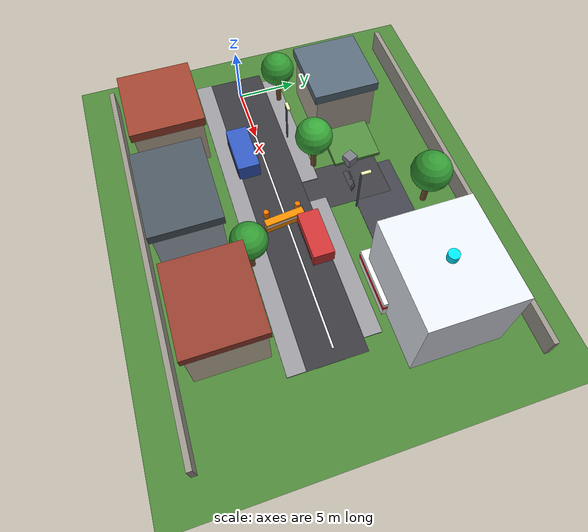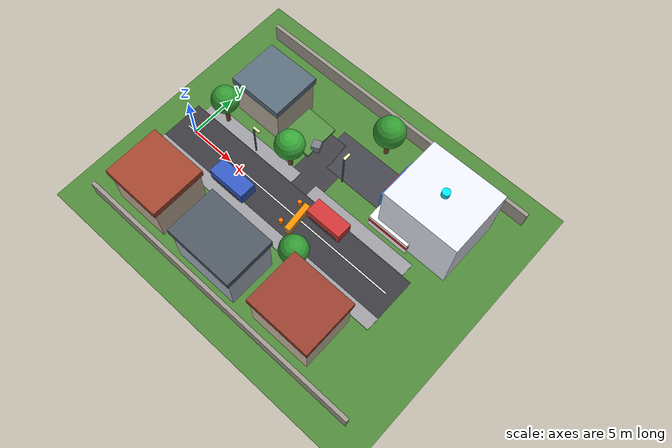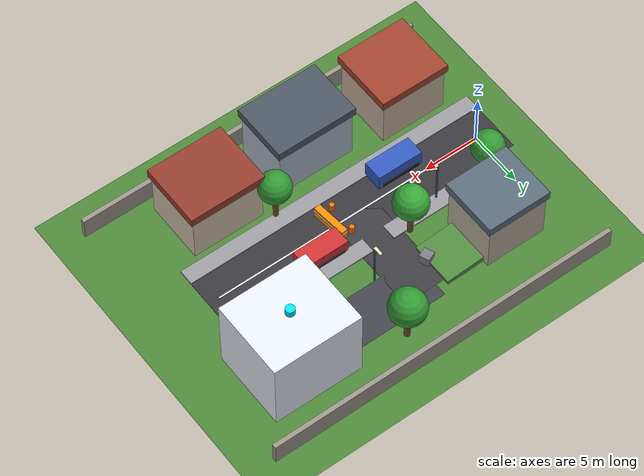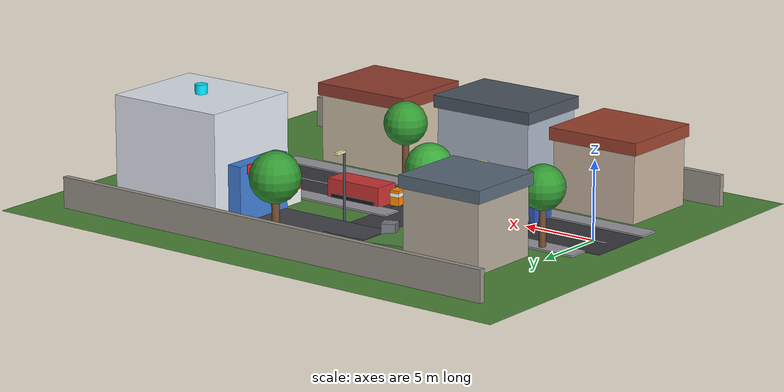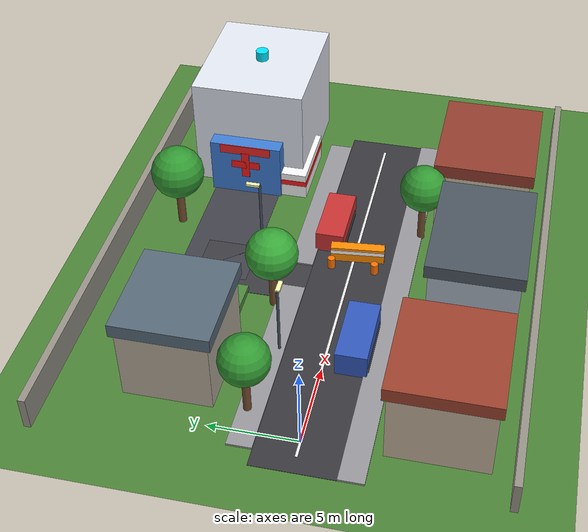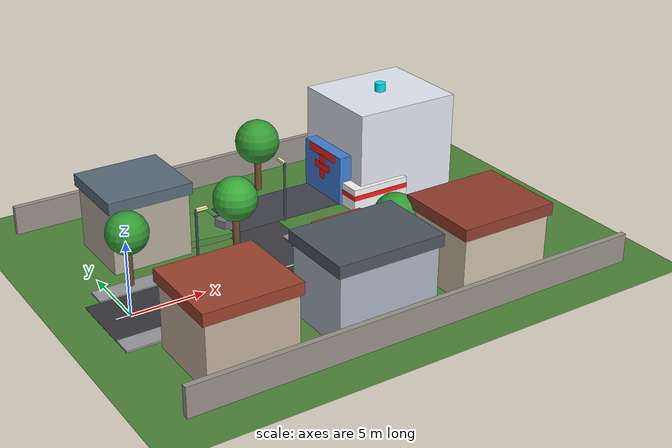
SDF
<sdf version="1.8">
 <world name="locality_hospital_world">
  <physics name="1ms" type="ode">
   <max_step_size>0.004</max_step_size>
   <real_time_factor>1.0</real_time_factor>
   <real_time_update_rate>250</real_time_update_rate>
   <ode>
    <solver><type>quick</type><iters>50</iters><sor>1.3</sor></solver>
    <constraints>
     <cfm>0.00001</cfm>
     <erp>0.2</erp>
     <contact_max_correcting_vel>100.0</contact_max_correcting_vel>
     <contact_surface_layer>0.001</contact_surface_layer>
    </constraints>
   </ode>
  </physics>
  <plugin filename="gz-sim-physics-system" name="gz::sim::systems::Physics"/>
  <plugin filename="gz-sim-user-commands-system" name="gz::sim::systems::UserCommands"/>
  <plugin filename="gz-sim-scene-broadcaster-system" name="gz::sim::systems::SceneBroadcaster"/>
  <plugin filename="gz-sim-sensors-system" name="gz::sim::systems::Sensors">
   <render_engine>ogre</render_engine>
  </plugin>
  <plugin filename="gz-sim-imu-system" name="gz::sim::systems::Imu"/>
  <scene>
   <ambient>0.6 0.65 0.7 1.0</ambient>
   <background>0.5 0.7 0.9 1.0</background>
   <shadows>true</shadows>
   <grid>false</grid>
  </scene>
  <light type="directional" name="sun">
   <pose>10 15 35 0 0.8 0.6</pose>
   <diffuse>0.95 0.92 0.85 1.0</diffuse>
   <specular>0.4 0.4 0.4 1.0</specular>
   <direction>-0.5 0.3 -0.9</direction>
  </light>
  <model name="ground_plane">
   <static>true</static>
   <link name="link">
    <collision name="collision">
     <geometry><plane><normal>0 0 1</normal><size>80 60</size></plane></geometry>
     <surface><friction><ode><mu>1.0</mu><mu2>1.0</mu2></ode></friction></surface>
    </collision>
    <visual name="visual">
     <geometry><plane><normal>0 0 1</normal><size>80 60</size></plane></geometry>
     <material><ambient>0.25 0.45 0.2 1.0</ambient><diffuse>0.3 0.52 0.22 1.0</diffuse></material>
    </visual>
   </link>
  </model>
  <model name="main_road_segment1">
   <static>true</static>
   <pose>12.0 0.0 0.01 0 0 0</pose>
   <link name="link">
    <collision name="col"><geometry><box><size>28.0 4.6 0.02</size></box></geometry></collision>
    <visual name="vis">
     <geometry><box><size>28.0 4.6 0.02</size></box></geometry>
     <material><ambient>0.18 0.18 0.20 1.0</ambient><diffuse>0.22 0.22 0.24 1.0</diffuse></material>
    </visual>
   </link>
  </model>
  <model name="road_centerline">
   <static>true</static>
   <pose>12.0 0.0 0.025 0 0 0</pose>
   <link name="link">
    <visual name="vis">
     <geometry><box><size>26.0 0.15 0.005</size></box></geometry>
     <material><ambient>0.9 0.9 0.9 1.0</ambient><diffuse>0.95 0.95 0.95 1.0</diffuse></material>
    </visual>
   </link>
  </model>
  <model name="hospital_crossroad">
   <static>true</static>
   <pose>12.0 4.5 0.01 0 0 1.5708</pose>
   <link name="link">
    <collision name="col"><geometry><box><size>9.0 4.0 0.02</size></box></geometry></collision>
    <visual name="vis">
     <geometry><box><size>9.0 4.0 0.02</size></box></geometry>
     <material><ambient>0.20 0.20 0.22 1.0</ambient><diffuse>0.24 0.24 0.26 1.0</diffuse></material>
    </visual>
   </link>
  </model>
  <model name="hospital_driveway">
   <static>true</static>
   <pose>18.0 8.0 0.01 0 0 0</pose>
   <link name="link">
    <collision name="col"><geometry><box><size>14.0 4.2 0.02</size></box></geometry></collision>
    <visual name="vis">
     <geometry><box><size>14.0 4.2 0.02</size></box></geometry>
     <material><ambient>0.22 0.22 0.25 1.0</ambient><diffuse>0.26 0.26 0.30 1.0</diffuse></material>
    </visual>
   </link>
  </model>
  <model name="sidewalk_south">
   <static>true</static>
   <pose>12.0 -3.0 0.06 0 0 0</pose>
   <link name="link">
    <collision name="col"><geometry><box><size>28.0 1.4 0.12</size></box></geometry></collision>
    <visual name="vis">
     <geometry><box><size>28.0 1.4 0.12</size></box></geometry>
     <material><ambient>0.5 0.5 0.52 1.0</ambient><diffuse>0.6 0.6 0.62 1.0</diffuse></material>
    </visual>
   </link>
  </model>
  <model name="sidewalk_north1">
   <static>true</static>
   <pose>5.0 3.0 0.06 0 0 0</pose>
   <link name="link">
    <collision name="col"><geometry><box><size>12.0 1.4 0.12</size></box></geometry></collision>
    <visual name="vis">
     <geometry><box><size>12.0 1.4 0.12</size></box></geometry>
     <material><ambient>0.5 0.5 0.52 1.0</ambient><diffuse>0.6 0.6 0.62 1.0</diffuse></material>
    </visual>
   </link>
  </model>
  <model name="sidewalk_north2">
   <static>true</static>
   <pose>19.0 3.0 0.06 0 0 0</pose>
   <link name="link">
    <collision name="col"><geometry><box><size>12.0 1.4 0.12</size></box></geometry></collision>
    <visual name="vis">
     <geometry><box><size>12.0 1.4 0.12</size></box></geometry>
     <material><ambient>0.5 0.5 0.52 1.0</ambient><diffuse>0.6 0.6 0.62 1.0</diffuse></material>
    </visual>
   </link>
  </model>
  <model name="hospital_building">
   <static>true</static>
   <pose>24.0 8.0 0.0 0 0 0</pose>
   <link name="hospital_main_wing">
    <pose>0 0 3.5 0 0 0</pose>
    <collision name="col"><geometry><box><size>8.0 7.0 7.0</size></box></geometry></collision>
    <visual name="vis">
     <geometry><box><size>8.0 7.0 7.0</size></box></geometry>
     <material><ambient>0.85 0.88 0.92 1.0</ambient><diffuse>0.90 0.92 0.96 1.0</diffuse></material>
    </visual>
   </link>
   <link name="hospital_portico">
    <pose>-4.2 0 1.8 0 0 0</pose>
    <collision name="col"><geometry><box><size>1.5 4.5 3.6</size></box></geometry></collision>
    <visual name="vis">
     <geometry><box><size>1.5 4.5 3.6</size></box></geometry>
     <material><ambient>0.2 0.4 0.7 1.0</ambient><diffuse>0.25 0.5 0.85 1.0</diffuse></material>
    </visual>
   </link>
   <link name="red_cross_horizontal">
    <pose>-4.98 0 2.2 0 0 0</pose>
    <visual name="vis">
     <geometry><box><size>0.08 1.8 0.5</size></box></geometry>
     <material>
      <ambient>0.9 0.1 0.1 1.0</ambient>
      <diffuse>1.0 0.1 0.1 1.0</diffuse>
      <emissive>0.4 0.0 0.0 1.0</emissive>
     </material>
    </visual>
   </link>
   <link name="red_cross_vertical">
    <pose>-4.98 0 2.2 0 0 0</pose>
    <visual name="vis">
     <geometry><box><size>0.08 0.5 1.8</size></box></geometry>
     <material>
      <ambient>0.9 0.1 0.1 1.0</ambient>
      <diffuse>1.0 0.1 0.1 1.0</diffuse>
      <emissive>0.4 0.0 0.0 1.0</emissive>
     </material>
    </visual>
   </link>
   <link name="hospital_sign">
    <pose>-4.98 0 3.3 0 0 0</pose>
    <visual name="vis">
     <geometry><box><size>0.06 3.2 0.6</size></box></geometry>
     <material><ambient>0.95 0.1 0.1 1.0</ambient><diffuse>0.95 0.15 0.15 1.0</diffuse></material>
    </visual>
   </link>
   <link name="hospital_beacon">
    <pose>0 0 7.3 0 0 0</pose>
    <visual name="vis">
     <geometry><cylinder><radius>0.4</radius><length>0.6</length></cylinder></geometry>
     <material>
      <ambient>0.0 0.8 1.0 1.0</ambient>
      <diffuse>0.0 0.9 1.0 1.0</diffuse>
      <emissive>0.0 0.7 1.0 1.0</emissive>
     </material>
    </visual>
   </link>
  </model>
  <model name="parked_ambulance">
   <static>true</static>
   <pose>21.5 5.2 0.85 0 0 1.5708</pose>
   <link name="link">
    <collision name="col"><geometry><box><size>2.1 4.5 1.7</size></box></geometry></collision>
    <visual name="body">
     <geometry><box><size>2.1 4.5 1.7</size></box></geometry>
     <material><ambient>0.95 0.95 0.95 1.0</ambient><diffuse>0.98 0.98 0.98 1.0</diffuse></material>
    </visual>
    <visual name="red_stripe">
     <pose>0 0 0.2 0 0 0</pose>
     <geometry><box><size>2.15 4.52 0.35</size></box></geometry>
     <material><ambient>0.9 0.1 0.1 1.0</ambient><diffuse>1.0 0.1 0.1 1.0</diffuse></material>
    </visual>
    <visual name="siren_light">
     <pose>0 0 0.95 0 0 0</pose>
     <geometry><box><size>0.8 0.4 0.15</size></box></geometry>
     <material>
      <ambient>0.1 0.2 0.9 1.0</ambient>
      <diffuse>0.2 0.3 1.0 1.0</diffuse>
      <emissive>0.1 0.2 0.8 1.0</emissive>
     </material>
    </visual>
   </link>
  </model>
  <model name="house_1">
   <static>true</static>
   <pose>3.0 -7.0 0.0 0 0 0</pose>
   <link name="link">
    <pose>0 0 2.2 0 0 0</pose>
    <collision name="col"><geometry><box><size>6.0 5.5 4.4</size></box></geometry></collision>
    <visual name="body">
     <geometry><box><size>6.0 5.5 4.4</size></box></geometry>
     <material><ambient>0.72 0.65 0.58 1.0</ambient><diffuse>0.78 0.70 0.62 1.0</diffuse></material>
    </visual>
    <visual name="roof">
     <pose>0 0 2.6 0 0 0</pose>
     <geometry><box><size>6.4 5.9 0.8</size></box></geometry>
     <material><ambient>0.55 0.22 0.15 1.0</ambient><diffuse>0.62 0.26 0.18 1.0</diffuse></material>
    </visual>
   </link>
  </model>
  <model name="house_2">
   <static>true</static>
   <pose>12.0 -7.5 0.0 0 0 0</pose>
   <link name="link">
    <pose>0 0 2.4 0 0 0</pose>
    <collision name="col"><geometry><box><size>7.0 5.0 4.8</size></box></geometry></collision>
    <visual name="body">
     <geometry><box><size>7.0 5.0 4.8</size></box></geometry>
     <material><ambient>0.60 0.65 0.70 1.0</ambient><diffuse>0.68 0.72 0.78 1.0</diffuse></material>
    </visual>
    <visual name="roof">
     <pose>0 0 2.8 0 0 0</pose>
     <geometry><box><size>7.4 5.4 0.8</size></box></geometry>
     <material><ambient>0.25 0.28 0.32 1.0</ambient><diffuse>0.30 0.34 0.38 1.0</diffuse></material>
    </visual>
   </link>
  </model>
  <model name="house_3">
   <static>true</static>
   <pose>21.0 -7.0 0.0 0 0 0</pose>
   <link name="link">
    <pose>0 0 2.2 0 0 0</pose>
    <collision name="col"><geometry><box><size>6.5 5.5 4.4</size></box></geometry></collision>
    <visual name="body">
     <geometry><box><size>6.5 5.5 4.4</size></box></geometry>
     <material><ambient>0.75 0.70 0.60 1.0</ambient><diffuse>0.82 0.76 0.66 1.0</diffuse></material>
    </visual>
    <visual name="roof">
     <pose>0 0 2.6 0 0 0</pose>
     <geometry><box><size>6.9 5.9 0.8</size></box></geometry>
     <material><ambient>0.50 0.20 0.15 1.0</ambient><diffuse>0.58 0.24 0.18 1.0</diffuse></material>
    </visual>
   </link>
  </model>
  <model name="house_4">
   <static>true</static>
   <pose>4.0 7.5 0.0 0 0 0</pose>
   <link name="link">
    <pose>0 0 2.2 0 0 0</pose>
    <collision name="col"><geometry><box><size>5.5 5.0 4.4</size></box></geometry></collision>
    <visual name="body">
     <geometry><box><size>5.5 5.0 4.4</size></box></geometry>
     <material><ambient>0.65 0.60 0.55 1.0</ambient><diffuse>0.72 0.68 0.62 1.0</diffuse></material>
    </visual>
    <visual name="roof">
     <pose>0 0 2.6 0 0 0</pose>
     <geometry><box><size>5.9 5.4 0.8</size></box></geometry>
     <material><ambient>0.30 0.35 0.40 1.0</ambient><diffuse>0.35 0.42 0.48 1.0</diffuse></material>
    </visual>
   </link>
  </model>
  <model name="parked_suv">
   <static>true</static>
   <pose>7.0 -1.6 0.75 0 0 0</pose>
   <link name="link">
    <collision name="col"><geometry><box><size>4.2 1.8 1.5</size></box></geometry></collision>
    <visual name="vis">
     <geometry><box><size>4.2 1.8 1.5</size></box></geometry>
     <material><ambient>0.15 0.25 0.55 1.0</ambient><diffuse>0.20 0.35 0.75 1.0</diffuse></material>
    </visual>
    <visual name="wheels">
     <pose>0 0 -0.5 0 0 0</pose>
     <geometry><box><size>3.6 1.9 0.4</size></box></geometry>
     <material><ambient>0.1 0.1 0.1 1.0</ambient><diffuse>0.1 0.1 0.1 1.0</diffuse></material>
    </visual>
   </link>
  </model>
  <model name="parked_sedan">
   <static>true</static>
   <pose>16.5 1.6 0.65 0 0 0</pose>
   <link name="link">
    <collision name="col"><geometry><box><size>4.0 1.7 1.3</size></box></geometry></collision>
    <visual name="vis">
     <geometry><box><size>4.0 1.7 1.3</size></box></geometry>
     <material><ambient>0.6 0.15 0.15 1.0</ambient><diffuse>0.8 0.20 0.20 1.0</diffuse></material>
    </visual>
    <visual name="wheels">
     <pose>0 0 -0.45 0 0 0</pose>
     <geometry><box><size>3.4 1.8 0.35</size></box></geometry>
     <material><ambient>0.1 0.1 0.1 1.0</ambient><diffuse>0.1 0.1 0.1 1.0</diffuse></material>
    </visual>
   </link>
  </model>
  <model name="roadwork_barrier_center">
   <static>true</static>
   <pose>14.2 -0.2 0.5 0 0 0.1</pose>
   <link name="link">
    <collision name="col"><geometry><box><size>0.6 3.2 1.0</size></box></geometry></collision>
    <visual name="vis">
     <geometry><box><size>0.6 3.2 1.0</size></box></geometry>
     <material><ambient>0.95 0.5 0.0 1.0</ambient><diffuse>1.0 0.55 0.0 1.0</diffuse></material>
    </visual>
    <visual name="stripe1">
     <pose>0 0 0.2 0 0 0</pose>
     <geometry><box><size>0.62 3.22 0.25</size></box></geometry>
     <material><ambient>0.95 0.95 0.95 1.0</ambient><diffuse>1.0 1.0 1.0 1.0</diffuse></material>
    </visual>
   </link>
  </model>
  <model name="traffic_cone_1">
   <static>true</static>
   <pose>13.2 1.2 0.35 0 0 0</pose>
   <link name="link">
    <collision name="col">
     <geometry><cylinder><radius>0.22</radius><length>0.7</length></cylinder></geometry>
    </collision>
    <visual name="vis">
     <geometry><cylinder><radius>0.22</radius><length>0.7</length></cylinder></geometry>
     <material><ambient>1.0 0.4 0.0 1.0</ambient><diffuse>1.0 0.45 0.0 1.0</diffuse></material>
    </visual>
   </link>
  </model>
  <model name="traffic_cone_2">
   <static>true</static>
   <pose>13.2 -1.4 0.35 0 0 0</pose>
   <link name="link">
    <collision name="col">
     <geometry><cylinder><radius>0.22</radius><length>0.7</length></cylinder></geometry>
    </collision>
    <visual name="vis">
     <geometry><cylinder><radius>0.22</radius><length>0.7</length></cylinder></geometry>
     <material><ambient>1.0 0.4 0.0 1.0</ambient><diffuse>1.0 0.45 0.0 1.0</diffuse></material>
    </visual>
   </link>
  </model>
  <model name="park_uneven_mound">
   <static>true</static>
   <pose>8.0 7.5 0.25 0 0.08 0</pose>
   <link name="link">
    <collision name="col"><geometry><box><size>4.5 4.0 0.5</size></box></geometry></collision>
    <visual name="vis">
     <geometry><box><size>4.5 4.0 0.5</size></box></geometry>
     <material><ambient>0.28 0.48 0.22 1.0</ambient><diffuse>0.32 0.55 0.25 1.0</diffuse></material>
    </visual>
   </link>
  </model>
  <model name="park_boulder">
   <static>true</static>
   <pose>10.2 6.8 0.45 0 0 0.4</pose>
   <link name="link">
    <collision name="col"><geometry><box><size>0.9 0.9 0.9</size></box></geometry></collision>
    <visual name="vis">
     <geometry><box><size>0.9 0.9 0.9</size></box></geometry>
     <material><ambient>0.42 0.42 0.45 1.0</ambient><diffuse>0.48 0.48 0.52 1.0</diffuse></material>
    </visual>
   </link>
  </model>
  <model name="tree_1">
   <static>true</static>
   <pose>1.5 3.2 0 0 0 0</pose>
   <link name="trunk">
    <pose>0 0 1.5 0 0 0</pose>
    <collision name="col">
     <geometry><cylinder><radius>0.22</radius><length>3.0</length></cylinder></geometry>
    </collision>
    <visual name="vis">
     <geometry><cylinder><radius>0.22</radius><length>3.0</length></cylinder></geometry>
     <material><ambient>0.4 0.25 0.15 1.0</ambient><diffuse>0.45 0.3 0.18 1.0</diffuse></material>
    </visual>
   </link>
   <link name="foliage">
    <pose>0 0 3.8 0 0 0</pose>
    <visual name="vis">
     <geometry><sphere><radius>1.4</radius></sphere></geometry>
     <material><ambient>0.15 0.5 0.15 1.0</ambient><diffuse>0.2 0.6 0.2 1.0</diffuse></material>
    </visual>
   </link>
  </model>
  <model name="tree_2">
   <static>true</static>
   <pose>9.5 3.8 0 0 0 0</pose>
   <link name="trunk">
    <pose>0 0 1.5 0 0 0</pose>
    <collision name="col">
     <geometry><cylinder><radius>0.24</radius><length>3.0</length></cylinder></geometry>
    </collision>
    <visual name="vis">
     <geometry><cylinder><radius>0.24</radius><length>3.0</length></cylinder></geometry>
     <material><ambient>0.4 0.25 0.15 1.0</ambient><diffuse>0.45 0.3 0.18 1.0</diffuse></material>
    </visual>
   </link>
   <link name="foliage">
    <pose>0 0 3.8 0 0 0</pose>
    <visual name="vis">
     <geometry><sphere><radius>1.5</radius></sphere></geometry>
     <material><ambient>0.18 0.55 0.18 1.0</ambient><diffuse>0.22 0.65 0.22 1.0</diffuse></material>
    </visual>
   </link>
  </model>
  <model name="tree_3">
   <static>true</static>
   <pose>15.5 11.2 0 0 0 0</pose>
   <link name="trunk">
    <pose>0 0 1.5 0 0 0</pose>
    <collision name="col">
     <geometry><cylinder><radius>0.25</radius><length>3.0</length></cylinder></geometry>
    </collision>
    <visual name="vis">
     <geometry><cylinder><radius>0.25</radius><length>3.0</length></cylinder></geometry>
     <material><ambient>0.4 0.25 0.15 1.0</ambient><diffuse>0.45 0.3 0.18 1.0</diffuse></material>
    </visual>
   </link>
   <link name="foliage">
    <pose>0 0 3.8 0 0 0</pose>
    <visual name="vis">
     <geometry><sphere><radius>1.6</radius></sphere></geometry>
     <material><ambient>0.15 0.5 0.15 1.0</ambient><diffuse>0.2 0.6 0.2 1.0</diffuse></material>
    </visual>
   </link>
  </model>
  <model name="tree_4">
   <static>true</static>
   <pose>17.0 -3.6 0 0 0 0</pose>
   <link name="trunk">
    <pose>0 0 1.5 0 0 0</pose>
    <collision name="col">
     <geometry><cylinder><radius>0.22</radius><length>3.0</length></cylinder></geometry>
    </collision>
    <visual name="vis">
     <geometry><cylinder><radius>0.22</radius><length>3.0</length></cylinder></geometry>
     <material><ambient>0.4 0.25 0.15 1.0</ambient><diffuse>0.45 0.3 0.18 1.0</diffuse></material>
    </visual>
   </link>
   <link name="foliage">
    <pose>0 0 3.8 0 0 0</pose>
    <visual name="vis">
     <geometry><sphere><radius>1.4</radius></sphere></geometry>
     <material><ambient>0.15 0.5 0.15 1.0</ambient><diffuse>0.2 0.6 0.2 1.0</diffuse></material>
    </visual>
   </link>
  </model>
  <model name="street_lamp_1">
   <static>true</static>
   <pose>6.0 2.6 0 0 0 0</pose>
   <link name="link">
    <pose>0 0 2.2 0 0 0</pose>
    <collision name="col">
     <geometry><cylinder><radius>0.08</radius><length>4.4</length></cylinder></geometry>
    </collision>
    <visual name="post">
     <geometry><cylinder><radius>0.08</radius><length>4.4</length></cylinder></geometry>
     <material><ambient>0.2 0.25 0.3 1.0</ambient><diffuse>0.25 0.3 0.35 1.0</diffuse></material>
    </visual>
    <visual name="head">
     <pose>0.4 0 2.2 0 0 0</pose>
     <geometry><box><size>0.8 0.25 0.15</size></box></geometry>
     <material>
      <ambient>0.9 0.9 0.6 1.0</ambient>
      <diffuse>1.0 1.0 0.7 1.0</diffuse>
      <emissive>0.8 0.8 0.5 1.0</emissive>
     </material>
    </visual>
   </link>
  </model>
  <model name="street_lamp_2">
   <static>true</static>
   <pose>14.5 5.8 0 0 0 1.5708</pose>
   <link name="link">
    <pose>0 0 2.2 0 0 0</pose>
    <collision name="col">
     <geometry><cylinder><radius>0.08</radius><length>4.4</length></cylinder></geometry>
    </collision>
    <visual name="post">
     <geometry><cylinder><radius>0.08</radius><length>4.4</length></cylinder></geometry>
     <material><ambient>0.2 0.25 0.3 1.0</ambient><diffuse>0.25 0.3 0.35 1.0</diffuse></material>
    </visual>
    <visual name="head">
     <pose>0.4 0 2.2 0 0 0</pose>
     <geometry><box><size>0.8 0.25 0.15</size></box></geometry>
     <material>
      <ambient>0.9 0.9 0.6 1.0</ambient>
      <diffuse>1.0 1.0 0.7 1.0</diffuse>
      <emissive>0.8 0.8 0.5 1.0</emissive>
     </material>
    </visual>
   </link>
  </model>
  <model name="perimeter_wall_north">
   <static>true</static>
   <pose>14.0 14.0 1.0 0 0 0</pose>
   <link name="link">
    <collision name="col"><geometry><box><size>32.0 0.4 2.0</size></box></geometry></collision>
    <visual name="vis">
     <geometry><box><size>32.0 0.4 2.0</size></box></geometry>
     <material><ambient>0.5 0.48 0.45 1.0</ambient><diffuse>0.6 0.58 0.54 1.0</diffuse></material>
    </visual>
   </link>
  </model>
  <model name="perimeter_wall_south">
   <static>true</static>
   <pose>14.0 -11.0 1.0 0 0 0</pose>
   <link name="link">
    <collision name="col"><geometry><box><size>32.0 0.4 2.0</size></box></geometry></collision>
    <visual name="vis">
     <geometry><box><size>32.0 0.4 2.0</size></box></geometry>
     <material><ambient>0.5 0.48 0.45 1.0</ambient><diffuse>0.6 0.58 0.54 1.0</diffuse></material>
    </visual>
   </link>
  </model>
 </world>
</sdf>
